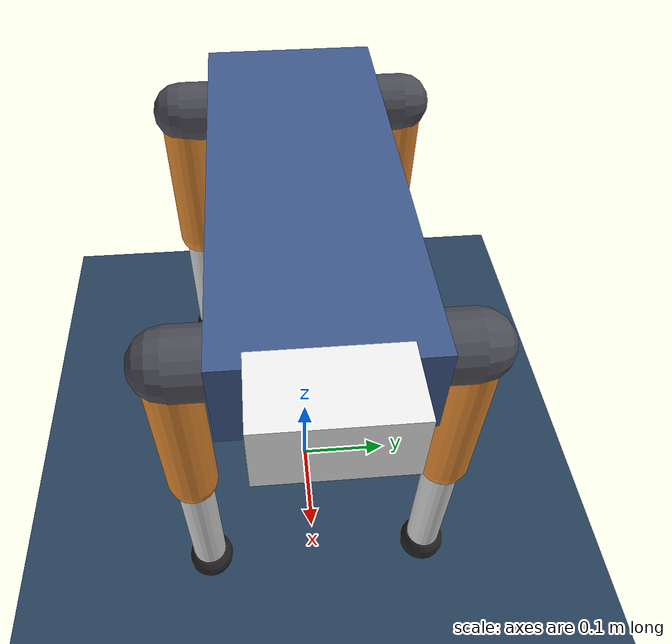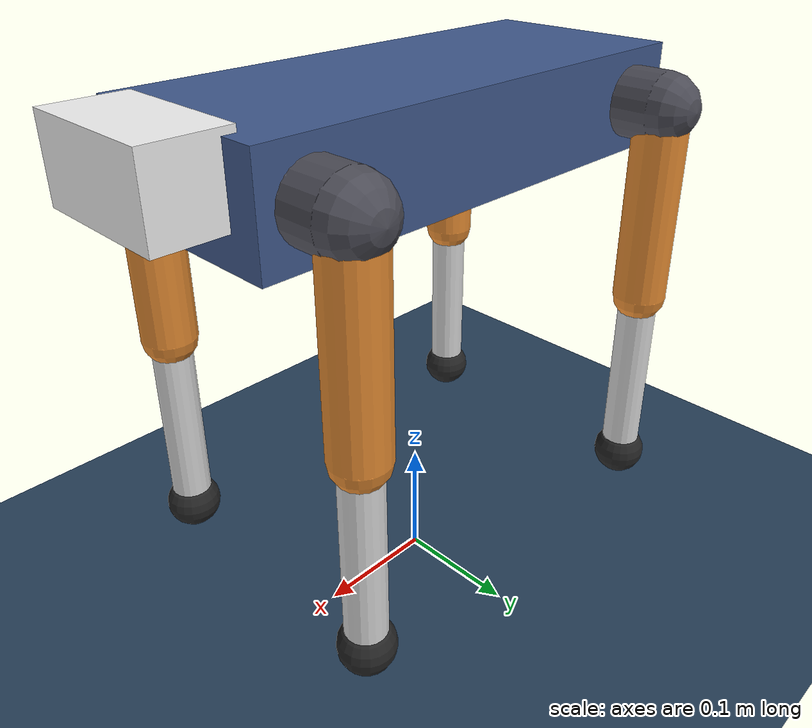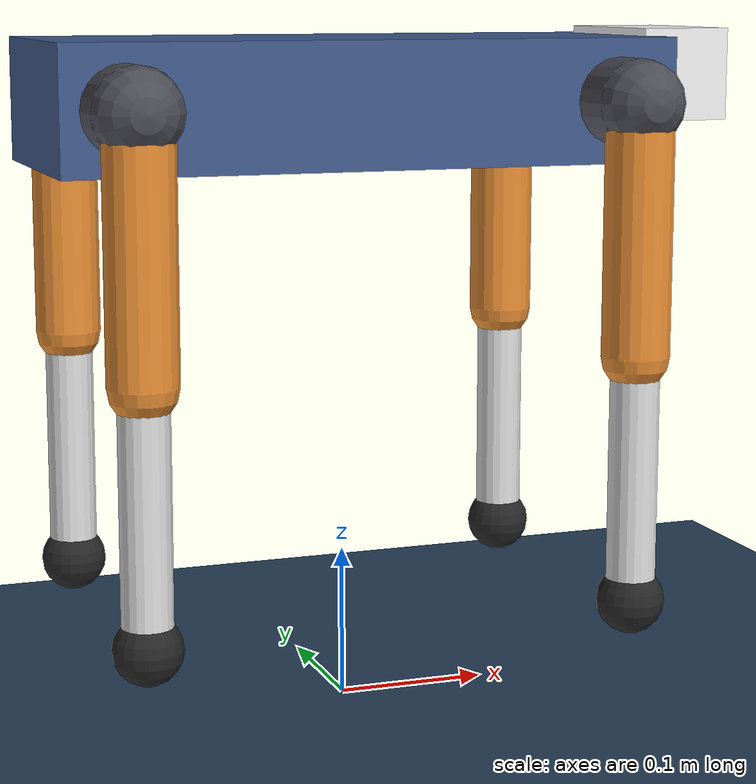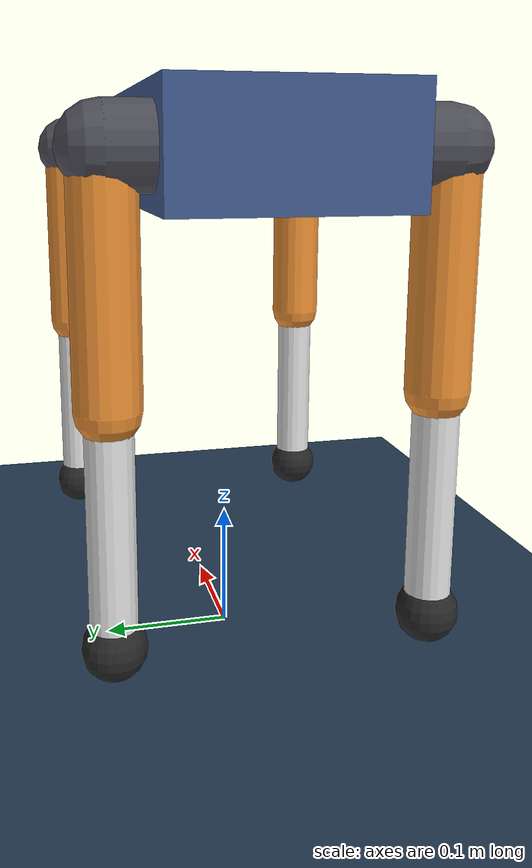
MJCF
<mujoco model="quadruped12">
  <compiler angle="radian" autolimits="true"/>

  <!-- Same physics options as quadruped.xml (see the explanations there). -->
  <option timestep="0.002" integrator="implicitfast" cone="elliptic" impratio="100"/>

  <statistic center="0 0 0.2" extent="0.9"/>
  <visual>
    <headlight diffuse="0.6 0.6 0.6" ambient="0.3 0.3 0.3" specular="0 0 0"/>
    <rgba haze="0.15 0.25 0.35 1"/>
    <global azimuth="135" elevation="-20"/>
    <quality shadowsize="4096"/>
  </visual>

  <asset>
    <texture type="skybox" builtin="gradient" rgb1="0.3 0.5 0.7" rgb2="0 0 0" width="512" height="3072"/>
    <texture type="2d" name="grid" builtin="checker" mark="edge" rgb1="0.2 0.3 0.4" rgb2="0.1 0.2 0.3"
             markrgb="0.8 0.8 0.8" width="300" height="300"/>
    <material name="grid" texture="grid" texrepeat="5 5" texuniform="true" reflectance="0.2"/>
  </asset>

  <default>
    <default class="robot">
      <geom contype="3" conaffinity="0" condim="3" friction="1.0 0.005 0.0001"/>

      <!-- armature = rotor inertia, damping = gearbox friction (see quadruped.xml). -->
      <joint type="hinge" axis="0 1 0" armature="0.01" damping="0.1"/>

      <!-- Position actuators (a PD controller in each motor), same as quadruped.xml. -->
      <position kp="40" kv="1.0" forcerange="-20 20" inheritrange="1"/>

      <default class="roll">
        <!-- +-0.8 rad (~46 deg) sideways, in the range of real robot dogs (Spot, ANYmal: ~0.75). -->
        <joint axis="1 0 0" range="-0.8 0.8"/>
      </default>
      <default class="hip">
        <joint range="-2.0 2.8"/>
      </default>
      <default class="knee">
        <joint range="-2.6 0"/>
      </default>

      <default class="torso">
        <geom contype="1" conaffinity="2" rgba="0.25 0.35 0.55 1"/>
      </default>
      <default class="hip_link">
        <!-- The hip motor housing: a short, fat capsule from the roll axis out to the thigh. -->
        <geom type="capsule" size="0.028" mass="0.15" rgba="0.3 0.3 0.34 1"/>
      </default>
      <default class="thigh">
        <geom type="capsule" size="0.022" fromto="0 0 0  0 0 -0.16" mass="0.4" rgba="0.9 0.55 0.2 1"/>
      </default>
      <default class="shin">
        <geom type="capsule" size="0.016" fromto="0 0 0  0 0 -0.16" mass="0.15" rgba="0.85 0.85 0.85 1"/>
      </default>
      <default class="foot">
        <geom type="sphere" size="0.022" pos="0 0 -0.16" mass="0.05" rgba="0.15 0.15 0.15 1"/>
      </default>
    </default>
  </default>

  <worldbody>
    <light name="sun" pos="0 0 3" dir="0 0 -1" directional="true" castshadow="true"/>
    <geom name="floor" type="plane" size="0 0 0.05" material="grid"/>

    <body name="torso" pos="0 0 0.4" childclass="robot">
      <freejoint name="root"/>
      <camera name="track" mode="trackcom" pos="0.4 -1.1 0.4" xyaxes="0.94 0.34 0  -0.11 0.30 0.95"/>

      <!-- 0.40 m long, 0.16 m wide, 0.08 m tall (half-extents), as in quadruped.xml. -->
      <geom name="torso" class="torso" type="box" size="0.2 0.08 0.04" mass="4.0"/>
      <geom name="head" class="torso" type="box" pos="0.22 0 0.015" size="0.03 0.055 0.03" mass="0.2"
            rgba="0.95 0.95 0.95 1"/>

      <body name="FL_hip_link" pos="0.16 0.08 0">
        <joint name="FL_roll" class="roll"/>
        <geom name="FL_hip_link" class="hip_link" fromto="0 0 0  0 0.03 0"/>
        <body name="FL_thigh" pos="0 0.03 0">
          <joint name="FL_hip" class="hip"/>
          <geom name="FL_thigh" class="thigh"/>
          <body name="FL_shin" pos="0 0 -0.16">
            <joint name="FL_knee" class="knee"/>
            <geom name="FL_shin" class="shin"/>
            <geom name="FL_foot" class="foot"/>
          </body>
        </body>
      </body>

      <body name="FR_hip_link" pos="0.16 -0.08 0">
        <joint name="FR_roll" class="roll"/>
        <geom name="FR_hip_link" class="hip_link" fromto="0 0 0  0 -0.03 0"/>
        <body name="FR_thigh" pos="0 -0.03 0">
          <joint name="FR_hip" class="hip"/>
          <geom name="FR_thigh" class="thigh"/>
          <body name="FR_shin" pos="0 0 -0.16">
            <joint name="FR_knee" class="knee"/>
            <geom name="FR_shin" class="shin"/>
            <geom name="FR_foot" class="foot"/>
          </body>
        </body>
      </body>

      <body name="RL_hip_link" pos="-0.16 0.08 0">
        <joint name="RL_roll" class="roll"/>
        <geom name="RL_hip_link" class="hip_link" fromto="0 0 0  0 0.03 0"/>
        <body name="RL_thigh" pos="0 0.03 0">
          <joint name="RL_hip" class="hip"/>
          <geom name="RL_thigh" class="thigh"/>
          <body name="RL_shin" pos="0 0 -0.16">
            <joint name="RL_knee" class="knee"/>
            <geom name="RL_shin" class="shin"/>
            <geom name="RL_foot" class="foot"/>
          </body>
        </body>
      </body>

      <body name="RR_hip_link" pos="-0.16 -0.08 0">
        <joint name="RR_roll" class="roll"/>
        <geom name="RR_hip_link" class="hip_link" fromto="0 0 0  0 -0.03 0"/>
        <body name="RR_thigh" pos="0 -0.03 0">
          <joint name="RR_hip" class="hip"/>
          <geom name="RR_thigh" class="thigh"/>
          <body name="RR_shin" pos="0 0 -0.16">
            <joint name="RR_knee" class="knee"/>
            <geom name="RR_shin" class="shin"/>
            <geom name="RR_foot" class="foot"/>
          </body>
        </body>
      </body>
    </body>
  </worldbody>

  <!-- One motor per joint, leg by leg (roll, hip, knee). Order here = order of data.ctrl. -->
  <actuator>
    <position name="FL_roll" joint="FL_roll" class="robot"/>
    <position name="FL_hip"  joint="FL_hip"  class="robot"/>
    <position name="FL_knee" joint="FL_knee" class="robot"/>
    <position name="FR_roll" joint="FR_roll" class="robot"/>
    <position name="FR_hip"  joint="FR_hip"  class="robot"/>
    <position name="FR_knee" joint="FR_knee" class="robot"/>
    <position name="RL_roll" joint="RL_roll" class="robot"/>
    <position name="RL_hip"  joint="RL_hip"  class="robot"/>
    <position name="RL_knee" joint="RL_knee" class="robot"/>
    <position name="RR_roll" joint="RR_roll" class="robot"/>
    <position name="RR_hip"  joint="RR_hip"  class="robot"/>
    <position name="RR_knee" joint="RR_knee" class="robot"/>
  </actuator>

  <keyframe>
    <key name="home"
         qpos="0 0 0.4  1 0 0 0
               0 0.7 -1.4  0 0.7 -1.4  0 0.7 -1.4  0 0.7 -1.4"
         ctrl="0 0.7 -1.4  0 0.7 -1.4  0 0.7 -1.4  0 0.7 -1.4"/>

    <!-- Pose presets (the web UI's pose buttons apply only ctrl), as in quadruped.xml ... -->
    <key name="crouch" ctrl="0 1.1 -2.2  0 1.1 -2.2  0 1.1 -2.2  0 1.1 -2.2"/>
    <key name="tall"   ctrl="0 0.35 -0.7  0 0.35 -0.7  0 0.35 -0.7  0 0.35 -0.7"/>
    <key name="sit"    ctrl="0 0.25 -0.5  0 0.25 -0.5  0 1.5 -2.5  0 1.5 -2.5"/>
    <!-- ... plus one only this robot can do: feet spread out sideways (roll outward 0.3 rad). -->
    <key name="wide"   ctrl="0.3 0.7 -1.4  -0.3 0.7 -1.4  0.3 0.7 -1.4  -0.3 0.7 -1.4"/>
  </keyframe>
</mujoco>
